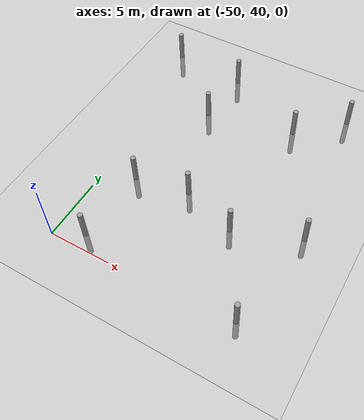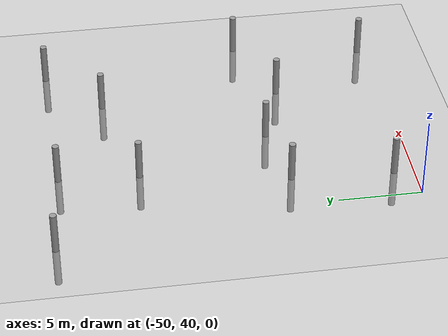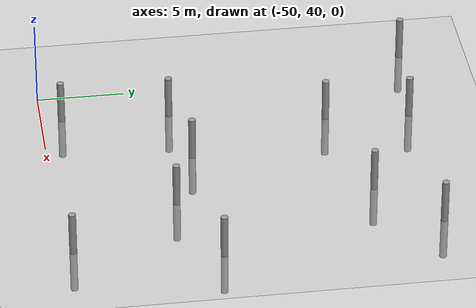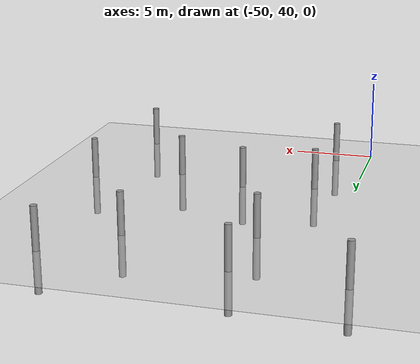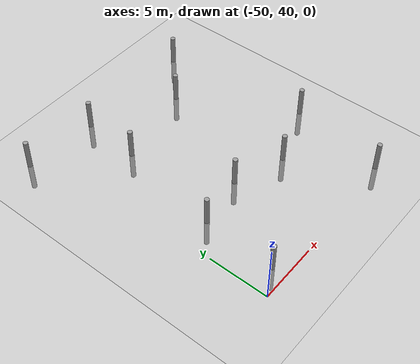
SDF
<sdf version="1.6">
 <world name="default">
  <model name="ground_plane">
   <static>1</static>
   <link name="link">
    <collision name="collision">
     <geometry><plane><normal>0 0 1</normal><size>100 100</size></plane></geometry>
     <surface><friction><ode><mu>100</mu><mu2>50</mu2></ode></friction></surface>
    </collision>
    <visual name="visual">
     <cast_shadows>0</cast_shadows>
     <geometry><plane><normal>0 0 1</normal><size>100 100</size></plane></geometry>
     <material>
      <script><uri>file://media/materials/scripts/gazebo.material</uri><name>Gazebo/Grey</name></script>
     </material>
    </visual>
   </link>
  </model>
  <model name="empty_pillars">
   <model name="empty_pillar_clone_54">
    <link name="link">
     <inertial>
      <mass>1</mass>
      <inertia><ixx>0.145833</ixx><ixy>0</ixy><ixz>0</ixz><iyy>0.145833</iyy><iyz>0</iyz><izz>0.125</izz></inertia>
     </inertial>
     <visual name="visual">
      <geometry><cylinder><radius>0.2</radius><length>5</length></cylinder></geometry>
      <material>
       <script><name>Gazebo/Grey</name><uri>file://media/materials/scripts/gazebo.material</uri></script>
       <shader type="vertex"><normal_map>__default__</normal_map></shader>
       <ambient>0.3 0.3 0.3 1</ambient>
       <diffuse>0.7 0.7 0.7 1</diffuse>
       <specular>0.01 0.01 0.01 1</specular>
       <emissive>0 0 0 1</emissive>
      </material>
     </visual>
     <collision name="collision">
      <geometry><cylinder><radius>0.05</radius><length>5</length></cylinder></geometry>
      <surface>
       <friction>
        <ode><mu>1</mu><mu2>1</mu2><fdir1>0 0 0</fdir1><slip1>0</slip1><slip2>0</slip2></ode>
        <torsional>
         <coefficient>1</coefficient>
         <patch_radius>0</patch_radius>
         <surface_radius>0</surface_radius>
         <use_patch_radius>1</use_patch_radius>
         <ode><slip>0</slip></ode>
        </torsional>
       </friction>
       <bounce><restitution_coefficient>0</restitution_coefficient><threshold>1e+06</threshold></bounce>
       <contact>
        <collide_without_contact>0</collide_without_contact>
        <collide_without_contact_bitmask>1</collide_without_contact_bitmask>
        <collide_bitmask>1</collide_bitmask>
        <ode>
         <soft_cfm>0</soft_cfm>
         <soft_erp>0.2</soft_erp>
         <kp>1e+13</kp>
         <kd>1</kd>
         <max_vel>0.01</max_vel>
         <min_depth>0</min_depth>
        </ode>
        <bullet>
         <split_impulse>1</split_impulse>
         <split_impulse_penetration_threshold>-0.01</split_impulse_penetration_threshold>
         <soft_cfm>0</soft_cfm>
         <soft_erp>0.2</soft_erp>
         <kp>1e+13</kp>
         <kd>1</kd>
        </bullet>
       </contact>
      </surface>
     </collision>
    </link>
    <static>0</static>
    <pose>24.557 -15.8784 0 0 -0 0</pose>
   </model>
   <static>0</static>
   <pose>-76.4247 77.3975 0 0 -0 0</pose>
  </model>
  <model name="empty_pillars_0">
   <model name="empty_pillar_clone_35">
    <link name="link">
     <inertial>
      <mass>1</mass>
      <inertia><ixx>0.145833</ixx><ixy>0</ixy><ixz>0</ixz><iyy>0.145833</iyy><iyz>0</iyz><izz>0.125</izz></inertia>
     </inertial>
     <visual name="visual">
      <geometry><cylinder><radius>0.2</radius><length>5</length></cylinder></geometry>
      <material>
       <script><name>Gazebo/Grey</name><uri>file://media/materials/scripts/gazebo.material</uri></script>
       <shader type="vertex"><normal_map>__default__</normal_map></shader>
       <ambient>0.3 0.3 0.3 1</ambient>
       <diffuse>0.7 0.7 0.7 1</diffuse>
       <specular>0.01 0.01 0.01 1</specular>
       <emissive>0 0 0 1</emissive>
      </material>
     </visual>
     <collision name="collision">
      <geometry><cylinder><radius>0.05</radius><length>5</length></cylinder></geometry>
      <surface>
       <friction>
        <ode><mu>1</mu><mu2>1</mu2><fdir1>0 0 0</fdir1><slip1>0</slip1><slip2>0</slip2></ode>
        <torsional>
         <coefficient>1</coefficient>
         <patch_radius>0</patch_radius>
         <surface_radius>0</surface_radius>
         <use_patch_radius>1</use_patch_radius>
         <ode><slip>0</slip></ode>
        </torsional>
       </friction>
       <bounce><restitution_coefficient>0</restitution_coefficient><threshold>1e+06</threshold></bounce>
       <contact>
        <collide_without_contact>0</collide_without_contact>
        <collide_without_contact_bitmask>1</collide_without_contact_bitmask>
        <collide_bitmask>1</collide_bitmask>
        <ode>
         <soft_cfm>0</soft_cfm>
         <soft_erp>0.2</soft_erp>
         <kp>1e+13</kp>
         <kd>1</kd>
         <max_vel>0.01</max_vel>
         <min_depth>0</min_depth>
        </ode>
        <bullet>
         <split_impulse>1</split_impulse>
         <split_impulse_penetration_threshold>-0.01</split_impulse_penetration_threshold>
         <soft_cfm>0</soft_cfm>
         <soft_erp>0.2</soft_erp>
         <kp>1e+13</kp>
         <kd>1</kd>
        </bullet>
       </contact>
      </surface>
     </collision>
    </link>
    <static>0</static>
    <pose>-19.4431 -17.0281 0 0 -0 0</pose>
   </model>
   <model name="empty_pillar_clone_42">
    <link name="link">
     <inertial>
      <mass>1</mass>
      <inertia><ixx>0.145833</ixx><ixy>0</ixy><ixz>0</ixz><iyy>0.145833</iyy><iyz>0</iyz><izz>0.125</izz></inertia>
     </inertial>
     <visual name="visual">
      <geometry><cylinder><radius>0.2</radius><length>5</length></cylinder></geometry>
      <material>
       <script><name>Gazebo/Grey</name><uri>file://media/materials/scripts/gazebo.material</uri></script>
       <shader type="vertex"><normal_map>__default__</normal_map></shader>
       <ambient>0.3 0.3 0.3 1</ambient>
       <diffuse>0.7 0.7 0.7 1</diffuse>
       <specular>0.01 0.01 0.01 1</specular>
       <emissive>0 0 0 1</emissive>
      </material>
     </visual>
     <collision name="collision">
      <geometry><cylinder><radius>0.05</radius><length>5</length></cylinder></geometry>
      <surface>
       <friction>
        <ode><mu>1</mu><mu2>1</mu2><fdir1>0 0 0</fdir1><slip1>0</slip1><slip2>0</slip2></ode>
        <torsional>
         <coefficient>1</coefficient>
         <patch_radius>0</patch_radius>
         <surface_radius>0</surface_radius>
         <use_patch_radius>1</use_patch_radius>
         <ode><slip>0</slip></ode>
        </torsional>
       </friction>
       <bounce><restitution_coefficient>0</restitution_coefficient><threshold>1e+06</threshold></bounce>
       <contact>
        <collide_without_contact>0</collide_without_contact>
        <collide_without_contact_bitmask>1</collide_without_contact_bitmask>
        <collide_bitmask>1</collide_bitmask>
        <ode>
         <soft_cfm>0</soft_cfm>
         <soft_erp>0.2</soft_erp>
         <kp>1e+13</kp>
         <kd>1</kd>
         <max_vel>0.01</max_vel>
         <min_depth>0</min_depth>
        </ode>
        <bullet>
         <split_impulse>1</split_impulse>
         <split_impulse_penetration_threshold>-0.01</split_impulse_penetration_threshold>
         <soft_cfm>0</soft_cfm>
         <soft_erp>0.2</soft_erp>
         <kp>1e+13</kp>
         <kd>1</kd>
        </bullet>
       </contact>
      </surface>
     </collision>
    </link>
    <static>0</static>
    <pose>-12.5409 -20.2416 0 0 -0 0</pose>
   </model>
   <model name="empty_pillar_clone_43">
    <link name="link">
     <inertial>
      <mass>1</mass>
      <inertia><ixx>0.145833</ixx><ixy>0</ixy><ixz>0</ixz><iyy>0.145833</iyy><iyz>0</iyz><izz>0.125</izz></inertia>
     </inertial>
     <visual name="visual">
      <geometry><cylinder><radius>0.2</radius><length>5</length></cylinder></geometry>
      <material>
       <script><name>Gazebo/Grey</name><uri>file://media/materials/scripts/gazebo.material</uri></script>
       <shader type="vertex"><normal_map>__default__</normal_map></shader>
       <ambient>0.3 0.3 0.3 1</ambient>
       <diffuse>0.7 0.7 0.7 1</diffuse>
       <specular>0.01 0.01 0.01 1</specular>
       <emissive>0 0 0 1</emissive>
      </material>
     </visual>
     <collision name="collision">
      <geometry><cylinder><radius>0.05</radius><length>5</length></cylinder></geometry>
      <surface>
       <friction>
        <ode><mu>1</mu><mu2>1</mu2><fdir1>0 0 0</fdir1><slip1>0</slip1><slip2>0</slip2></ode>
        <torsional>
         <coefficient>1</coefficient>
         <patch_radius>0</patch_radius>
         <surface_radius>0</surface_radius>
         <use_patch_radius>1</use_patch_radius>
         <ode><slip>0</slip></ode>
        </torsional>
       </friction>
       <bounce><restitution_coefficient>0</restitution_coefficient><threshold>1e+06</threshold></bounce>
       <contact>
        <collide_without_contact>0</collide_without_contact>
        <collide_without_contact_bitmask>1</collide_without_contact_bitmask>
        <collide_bitmask>1</collide_bitmask>
        <ode>
         <soft_cfm>0</soft_cfm>
         <soft_erp>0.2</soft_erp>
         <kp>1e+13</kp>
         <kd>1</kd>
         <max_vel>0.01</max_vel>
         <min_depth>0</min_depth>
        </ode>
        <bullet>
         <split_impulse>1</split_impulse>
         <split_impulse_penetration_threshold>-0.01</split_impulse_penetration_threshold>
         <soft_cfm>0</soft_cfm>
         <soft_erp>0.2</soft_erp>
         <kp>1e+13</kp>
         <kd>1</kd>
        </bullet>
       </contact>
      </surface>
     </collision>
    </link>
    <static>0</static>
    <pose>-19.7613 -21.8307 0 0 -0 0</pose>
   </model>
   <model name="empty_pillar_clone_45">
    <link name="link">
     <inertial>
      <mass>1</mass>
      <inertia><ixx>0.145833</ixx><ixy>0</ixy><ixz>0</ixz><iyy>0.145833</iyy><iyz>0</iyz><izz>0.125</izz></inertia>
     </inertial>
     <visual name="visual">
      <geometry><cylinder><radius>0.2</radius><length>5</length></cylinder></geometry>
      <material>
       <script><name>Gazebo/Grey</name><uri>file://media/materials/scripts/gazebo.material</uri></script>
       <shader type="vertex"><normal_map>__default__</normal_map></shader>
       <ambient>0.3 0.3 0.3 1</ambient>
       <diffuse>0.7 0.7 0.7 1</diffuse>
       <specular>0.01 0.01 0.01 1</specular>
       <emissive>0 0 0 1</emissive>
      </material>
     </visual>
     <collision name="collision">
      <geometry><cylinder><radius>0.05</radius><length>5</length></cylinder></geometry>
      <surface>
       <friction>
        <ode><mu>1</mu><mu2>1</mu2><fdir1>0 0 0</fdir1><slip1>0</slip1><slip2>0</slip2></ode>
        <torsional>
         <coefficient>1</coefficient>
         <patch_radius>0</patch_radius>
         <surface_radius>0</surface_radius>
         <use_patch_radius>1</use_patch_radius>
         <ode><slip>0</slip></ode>
        </torsional>
       </friction>
       <bounce><restitution_coefficient>0</restitution_coefficient><threshold>1e+06</threshold></bounce>
       <contact>
        <collide_without_contact>0</collide_without_contact>
        <collide_without_contact_bitmask>1</collide_without_contact_bitmask>
        <collide_bitmask>1</collide_bitmask>
        <ode>
         <soft_cfm>0</soft_cfm>
         <soft_erp>0.2</soft_erp>
         <kp>1e+13</kp>
         <kd>1</kd>
         <max_vel>0.01</max_vel>
         <min_depth>0</min_depth>
        </ode>
        <bullet>
         <split_impulse>1</split_impulse>
         <split_impulse_penetration_threshold>-0.01</split_impulse_penetration_threshold>
         <soft_cfm>0</soft_cfm>
         <soft_erp>0.2</soft_erp>
         <kp>1e+13</kp>
         <kd>1</kd>
        </bullet>
       </contact>
      </surface>
     </collision>
    </link>
    <static>0</static>
    <pose>-9.01076 -16.9307 0 0 -0 0</pose>
   </model>
   <static>0</static>
   <pose>-26.2243 78.0173 0 0 -0 0</pose>
  </model>
  <model name="empty_pillars_5">
   <model name="empty_pillar_clone_16">
    <link name="link">
     <inertial>
      <mass>1</mass>
      <inertia><ixx>0.145833</ixx><ixy>0</ixy><ixz>0</ixz><iyy>0.145833</iyy><iyz>0</iyz><izz>0.125</izz></inertia>
     </inertial>
     <visual name="visual">
      <geometry><cylinder><radius>0.2</radius><length>5</length></cylinder></geometry>
      <material>
       <script><name>Gazebo/Grey</name><uri>file://media/materials/scripts/gazebo.material</uri></script>
       <shader type="vertex"><normal_map>__default__</normal_map></shader>
       <ambient>0.3 0.3 0.3 1</ambient>
       <diffuse>0.7 0.7 0.7 1</diffuse>
       <specular>0.01 0.01 0.01 1</specular>
       <emissive>0 0 0 1</emissive>
      </material>
     </visual>
     <collision name="collision">
      <geometry><cylinder><radius>0.05</radius><length>5</length></cylinder></geometry>
      <surface>
       <friction>
        <ode><mu>1</mu><mu2>1</mu2><fdir1>0 0 0</fdir1><slip1>0</slip1><slip2>0</slip2></ode>
        <torsional>
         <coefficient>1</coefficient>
         <patch_radius>0</patch_radius>
         <surface_radius>0</surface_radius>
         <use_patch_radius>1</use_patch_radius>
         <ode><slip>0</slip></ode>
        </torsional>
       </friction>
       <bounce><restitution_coefficient>0</restitution_coefficient><threshold>1e+06</threshold></bounce>
       <contact>
        <collide_without_contact>0</collide_without_contact>
        <collide_without_contact_bitmask>1</collide_without_contact_bitmask>
        <collide_bitmask>1</collide_bitmask>
        <ode>
         <soft_cfm>0</soft_cfm>
         <soft_erp>0.2</soft_erp>
         <kp>1e+13</kp>
         <kd>1</kd>
         <max_vel>0.01</max_vel>
         <min_depth>0</min_depth>
        </ode>
        <bullet>
         <split_impulse>1</split_impulse>
         <split_impulse_penetration_threshold>-0.01</split_impulse_penetration_threshold>
         <soft_cfm>0</soft_cfm>
         <soft_erp>0.2</soft_erp>
         <kp>1e+13</kp>
         <kd>1</kd>
        </bullet>
       </contact>
      </surface>
     </collision>
    </link>
    <static>0</static>
    <pose>-9.20789 13.0504 0 0 -0 0</pose>
   </model>
   <model name="empty_pillar_clone_20">
    <link name="link">
     <inertial>
      <mass>1</mass>
      <inertia><ixx>0.145833</ixx><ixy>0</ixy><ixz>0</ixz><iyy>0.145833</iyy><iyz>0</iyz><izz>0.125</izz></inertia>
     </inertial>
     <visual name="visual">
      <geometry><cylinder><radius>0.2</radius><length>5</length></cylinder></geometry>
      <material>
       <script><name>Gazebo/Grey</name><uri>file://media/materials/scripts/gazebo.material</uri></script>
       <shader type="vertex"><normal_map>__default__</normal_map></shader>
       <ambient>0.3 0.3 0.3 1</ambient>
       <diffuse>0.7 0.7 0.7 1</diffuse>
       <specular>0.01 0.01 0.01 1</specular>
       <emissive>0 0 0 1</emissive>
      </material>
     </visual>
     <collision name="collision">
      <geometry><cylinder><radius>0.05</radius><length>5</length></cylinder></geometry>
      <surface>
       <friction>
        <ode><mu>1</mu><mu2>1</mu2><fdir1>0 0 0</fdir1><slip1>0</slip1><slip2>0</slip2></ode>
        <torsional>
         <coefficient>1</coefficient>
         <patch_radius>0</patch_radius>
         <surface_radius>0</surface_radius>
         <use_patch_radius>1</use_patch_radius>
         <ode><slip>0</slip></ode>
        </torsional>
       </friction>
       <bounce><restitution_coefficient>0</restitution_coefficient><threshold>1e+06</threshold></bounce>
       <contact>
        <collide_without_contact>0</collide_without_contact>
        <collide_without_contact_bitmask>1</collide_without_contact_bitmask>
        <collide_bitmask>1</collide_bitmask>
        <ode>
         <soft_cfm>0</soft_cfm>
         <soft_erp>0.2</soft_erp>
         <kp>1e+13</kp>
         <kd>1</kd>
         <max_vel>0.01</max_vel>
         <min_depth>0</min_depth>
        </ode>
        <bullet>
         <split_impulse>1</split_impulse>
         <split_impulse_penetration_threshold>-0.01</split_impulse_penetration_threshold>
         <soft_cfm>0</soft_cfm>
         <soft_erp>0.2</soft_erp>
         <kp>1e+13</kp>
         <kd>1</kd>
        </bullet>
       </contact>
      </surface>
     </collision>
    </link>
    <static>0</static>
    <pose>-13.0146 19.1597 0 0 -0 0</pose>
   </model>
   <model name="empty_pillar_clone_21">
    <link name="link">
     <inertial>
      <mass>1</mass>
      <inertia><ixx>0.145833</ixx><ixy>0</ixy><ixz>0</ixz><iyy>0.145833</iyy><iyz>0</iyz><izz>0.125</izz></inertia>
     </inertial>
     <visual name="visual">
      <geometry><cylinder><radius>0.2</radius><length>5</length></cylinder></geometry>
      <material>
       <script><name>Gazebo/Grey</name><uri>file://media/materials/scripts/gazebo.material</uri></script>
       <shader type="vertex"><normal_map>__default__</normal_map></shader>
       <ambient>0.3 0.3 0.3 1</ambient>
       <diffuse>0.7 0.7 0.7 1</diffuse>
       <specular>0.01 0.01 0.01 1</specular>
       <emissive>0 0 0 1</emissive>
      </material>
     </visual>
     <collision name="collision">
      <geometry><cylinder><radius>0.05</radius><length>5</length></cylinder></geometry>
      <surface>
       <friction>
        <ode><mu>1</mu><mu2>1</mu2><fdir1>0 0 0</fdir1><slip1>0</slip1><slip2>0</slip2></ode>
        <torsional>
         <coefficient>1</coefficient>
         <patch_radius>0</patch_radius>
         <surface_radius>0</surface_radius>
         <use_patch_radius>1</use_patch_radius>
         <ode><slip>0</slip></ode>
        </torsional>
       </friction>
       <bounce><restitution_coefficient>0</restitution_coefficient><threshold>1e+06</threshold></bounce>
       <contact>
        <collide_without_contact>0</collide_without_contact>
        <collide_without_contact_bitmask>1</collide_without_contact_bitmask>
        <collide_bitmask>1</collide_bitmask>
        <ode>
         <soft_cfm>0</soft_cfm>
         <soft_erp>0.2</soft_erp>
         <kp>1e+13</kp>
         <kd>1</kd>
         <max_vel>0.01</max_vel>
         <min_depth>0</min_depth>
        </ode>
        <bullet>
         <split_impulse>1</split_impulse>
         <split_impulse_penetration_threshold>-0.01</split_impulse_penetration_threshold>
         <soft_cfm>0</soft_cfm>
         <soft_erp>0.2</soft_erp>
         <kp>1e+13</kp>
         <kd>1</kd>
        </bullet>
       </contact>
      </surface>
     </collision>
    </link>
    <static>0</static>
    <pose>-21.7273 19.7662 0 0 -0 0</pose>
   </model>
   <model name="empty_pillar_clone_22">
    <link name="link">
     <inertial>
      <mass>1</mass>
      <inertia><ixx>0.145833</ixx><ixy>0</ixy><ixz>0</ixz><iyy>0.145833</iyy><iyz>0</iyz><izz>0.125</izz></inertia>
     </inertial>
     <visual name="visual">
      <geometry><cylinder><radius>0.2</radius><length>5</length></cylinder></geometry>
      <material>
       <script><name>Gazebo/Grey</name><uri>file://media/materials/scripts/gazebo.material</uri></script>
       <shader type="vertex"><normal_map>__default__</normal_map></shader>
       <ambient>0.3 0.3 0.3 1</ambient>
       <diffuse>0.7 0.7 0.7 1</diffuse>
       <specular>0.01 0.01 0.01 1</specular>
       <emissive>0 0 0 1</emissive>
      </material>
     </visual>
     <collision name="collision">
      <geometry><cylinder><radius>0.05</radius><length>5</length></cylinder></geometry>
      <surface>
       <friction>
        <ode><mu>1</mu><mu2>1</mu2><fdir1>0 0 0</fdir1><slip1>0</slip1><slip2>0</slip2></ode>
        <torsional>
         <coefficient>1</coefficient>
         <patch_radius>0</patch_radius>
         <surface_radius>0</surface_radius>
         <use_patch_radius>1</use_patch_radius>
         <ode><slip>0</slip></ode>
        </torsional>
       </friction>
       <bounce><restitution_coefficient>0</restitution_coefficient><threshold>1e+06</threshold></bounce>
       <contact>
        <collide_without_contact>0</collide_without_contact>
        <collide_without_contact_bitmask>1</collide_without_contact_bitmask>
        <collide_bitmask>1</collide_bitmask>
        <ode>
         <soft_cfm>0</soft_cfm>
         <soft_erp>0.2</soft_erp>
         <kp>1e+13</kp>
         <kd>1</kd>
         <max_vel>0.01</max_vel>
         <min_depth>0</min_depth>
        </ode>
        <bullet>
         <split_impulse>1</split_impulse>
         <split_impulse_penetration_threshold>-0.01</split_impulse_penetration_threshold>
         <soft_cfm>0</soft_cfm>
         <soft_erp>0.2</soft_erp>
         <kp>1e+13</kp>
         <kd>1</kd>
        </bullet>
       </contact>
      </surface>
     </collision>
    </link>
    <static>0</static>
    <pose>-17.3667 20.5782 0 0 -0 0</pose>
   </model>
   <model name="empty_pillar_clone_25">
    <link name="link">
     <inertial>
      <mass>1</mass>
      <inertia><ixx>0.145833</ixx><ixy>0</ixy><ixz>0</ixz><iyy>0.145833</iyy><iyz>0</iyz><izz>0.125</izz></inertia>
     </inertial>
     <visual name="visual">
      <geometry><cylinder><radius>0.2</radius><length>5</length></cylinder></geometry>
      <material>
       <script><name>Gazebo/Grey</name><uri>file://media/materials/scripts/gazebo.material</uri></script>
       <shader type="vertex"><normal_map>__default__</normal_map></shader>
       <ambient>0.3 0.3 0.3 1</ambient>
       <diffuse>0.7 0.7 0.7 1</diffuse>
       <specular>0.01 0.01 0.01 1</specular>
       <emissive>0 0 0 1</emissive>
      </material>
     </visual>
     <collision name="collision">
      <geometry><cylinder><radius>0.05</radius><length>5</length></cylinder></geometry>
      <surface>
       <friction>
        <ode><mu>1</mu><mu2>1</mu2><fdir1>0 0 0</fdir1><slip1>0</slip1><slip2>0</slip2></ode>
        <torsional>
         <coefficient>1</coefficient>
         <patch_radius>0</patch_radius>
         <surface_radius>0</surface_radius>
         <use_patch_radius>1</use_patch_radius>
         <ode><slip>0</slip></ode>
        </torsional>
       </friction>
       <bounce><restitution_coefficient>0</restitution_coefficient><threshold>1e+06</threshold></bounce>
       <contact>
        <collide_without_contact>0</collide_without_contact>
        <collide_without_contact_bitmask>1</collide_without_contact_bitmask>
        <collide_bitmask>1</collide_bitmask>
        <ode>
         <soft_cfm>0</soft_cfm>
         <soft_erp>0.2</soft_erp>
         <kp>1e+13</kp>
         <kd>1</kd>
         <max_vel>0.01</max_vel>
         <min_depth>0</min_depth>
        </ode>
        <bullet>
         <split_impulse>1</split_impulse>
         <split_impulse_penetration_threshold>-0.01</split_impulse_penetration_threshold>
         <soft_cfm>0</soft_cfm>
         <soft_erp>0.2</soft_erp>
         <kp>1e+13</kp>
         <kd>1</kd>
        </bullet>
       </contact>
      </surface>
     </collision>
    </link>
    <static>0</static>
    <pose>-7.86239 21.1314 0 0 -0 0</pose>
   </model>
   <model name="empty_pillar_clone_50">
    <link name="link">
     <inertial>
      <mass>1</mass>
      <inertia><ixx>0.145833</ixx><ixy>0</ixy><ixz>0</ixz><iyy>0.145833</iyy><iyz>0</iyz><izz>0.125</izz></inertia>
     </inertial>
     <visual name="visual">
      <geometry><cylinder><radius>0.2</radius><length>5</length></cylinder></geometry>
      <material>
       <script><name>Gazebo/Grey</name><uri>file://media/materials/scripts/gazebo.material</uri></script>
       <shader type="vertex"><normal_map>__default__</normal_map></shader>
       <ambient>0.3 0.3 0.3 1</ambient>
       <diffuse>0.7 0.7 0.7 1</diffuse>
       <specular>0.01 0.01 0.01 1</specular>
       <emissive>0 0 0 1</emissive>
      </material>
     </visual>
     <collision name="collision">
      <geometry><cylinder><radius>0.05</radius><length>5</length></cylinder></geometry>
      <surface>
       <friction>
        <ode><mu>1</mu><mu2>1</mu2><fdir1>0 0 0</fdir1><slip1>0</slip1><slip2>0</slip2></ode>
        <torsional>
         <coefficient>1</coefficient>
         <patch_radius>0</patch_radius>
         <surface_radius>0</surface_radius>
         <use_patch_radius>1</use_patch_radius>
         <ode><slip>0</slip></ode>
        </torsional>
       </friction>
       <bounce><restitution_coefficient>0</restitution_coefficient><threshold>1e+06</threshold></bounce>
       <contact>
        <collide_without_contact>0</collide_without_contact>
        <collide_without_contact_bitmask>1</collide_without_contact_bitmask>
        <collide_bitmask>1</collide_bitmask>
        <ode>
         <soft_cfm>0</soft_cfm>
         <soft_erp>0.2</soft_erp>
         <kp>1e+13</kp>
         <kd>1</kd>
         <max_vel>0.01</max_vel>
         <min_depth>0</min_depth>
        </ode>
        <bullet>
         <split_impulse>1</split_impulse>
         <split_impulse_penetration_threshold>-0.01</split_impulse_penetration_threshold>
         <soft_cfm>0</soft_cfm>
         <soft_erp>0.2</soft_erp>
         <kp>1e+13</kp>
         <kd>1</kd>
        </bullet>
       </contact>
      </surface>
     </collision>
    </link>
    <static>0</static>
    <pose>-22.0498 13.6251 0 0 -0 0</pose>
   </model>
   <static>0</static>
   <pose>-25.786 27.5577 0 0 -0 0</pose>
  </model>
 </world>
</sdf>
